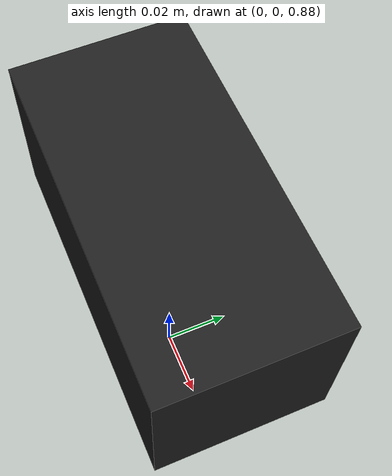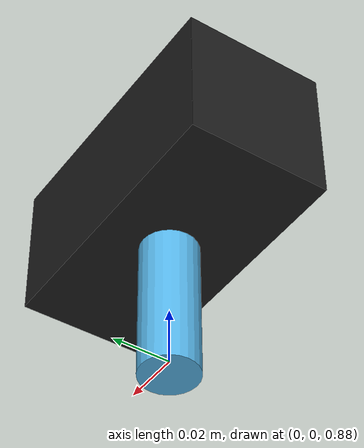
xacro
<?xml version="1.0" ?>
<robot name="camera" xmlns:xacro="http://www.ros.org/wiki/xacro">
<xacro:include filename="$(find rob_lab_mapping)/urdf/rob_lab_items_mesurments.xacro" />

      <link name="world"/>

      <link name="camera_rail">
      <visual>
            <origin rpy="0 0 0" xyz="0 0 0" />
        <geometry>
          <cylinder radius="${camera_rail_r}" length="${camera_rail_l}" />
        </geometry>
      </visual>
      <inertial>
      <origin xyz="0 0 0.0" rpy="0 0 0"/>
      <mass value="0.1"/>
      <inertia
      ixx="0.0" ixy="0.0" ixz="0.0"
      iyy="0.0" iyz="0.0"
      izz="0.0"/>
      </inertial>
      <collision>
        <origin rpy="0 0 0" xyz="0 0 0" />
        <geometry>
          <cylinder radius="${camera_rail_r}" length="${camera_rail_l}" />
        </geometry>
      </collision>
      </link>

        <!-- Camera -->
  <link name="camera_link">
    <visual>
            <origin rpy="0 0 0" xyz="0 0 0" />
        <geometry>
          <box size="${camera_size*2} ${camera_size} ${camera_size}" />
        </geometry>
      </visual>
      <inertial>
      <origin xyz="0 0 0.0" rpy="0 0 0"/>
      <mass value="0.1"/>
      <inertia
      ixx="0.0" ixy="0.0" ixz="0.0"
      iyy="0.0" iyz="0.0"
      izz="0.0"/>
      </inertial>
      <collision>
        <origin rpy="0 0 0" xyz="0 0 0" />
        <geometry>
          <box size="${camera_size*2} ${camera_size} ${camera_size}" />
        </geometry>
      </collision>
    </link>
<gazebo reference="camera_link">
  <sensor name="camera_link_sensor_name" type="depth">
    <update_rate>20</update_rate>
    <camera>
      <horizontal_fov>1.047198</horizontal_fov>
      <image>
        <width>640</width>
        <height>480</height>
        <format>R8G8B8</format>
      </image>
      <clip>
        <near>0.05</near>
        <far>3</far>
      </clip>
    </camera>
    <plugin name="camera_link_controller" filename="libgazebo_ros_openni_kinect.so">
      <baseline>0.2</baseline>
      <alwaysOn>true</alwaysOn>
      <updateRate>1.0</updateRate>
      <cameraName>camera_link_ir</cameraName>
      <imageTopicName>/camera_link/color/image_raw</imageTopicName>
      <cameraInfoTopicName>/camera_link/color/camera_info</cameraInfoTopicName>
      <depthImageTopicName>/camera_link/depth/image_raw</depthImageTopicName>
      <depthImageInfoTopicName>/camera_link/depth/camera_info</depthImageInfoTopicName>
      <pointCloudTopicName>/camera_link/depth/points</pointCloudTopicName>
      <frameName>camera_link</frameName>
      <pointCloudCutoff>0.5</pointCloudCutoff>
      <pointCloudCutoffMax>3.0</pointCloudCutoffMax>
      <distortionK1>0.00000001</distortionK1>
      <distortionK2>0.00000001</distortionK2>
      <distortionK3>0.00000001</distortionK3>
      <distortionT1>0.00000001</distortionT1>
      <distortionT2>0.00000001</distortionT2>
      <CxPrime>0</CxPrime>
      <Cx>0</Cx>
      <Cy>0</Cy>
      <focalLength>0</focalLength>
      <hackBaseline>0</hackBaseline>
    </plugin>
  </sensor>
</gazebo>

      <!-- Joint List Start -->

    <!-- Camera_joints -->
   <joint name="world_to_rail" type="fixed">
      <parent link="world"/>
      <child link="camera_rail"/>
      <origin
      xyz="0 0 ${first_wall_h/2}"
      rpy="0 0 0" />
      </joint>

    <joint name="rail_to_camera" type="revolute">
      <parent link="camera_rail"/>
      <child link="camera_link"/>
      <origin
      xyz="0 0 ${camera_size}"
      rpy="0 0 0" />
      <axis xyz="0 0 1" />
      <limit lower="-6.27" upper="6.27" effort="22.54" velocity="17.4845"/>
      </joint>

    <!-- Joint List End -->

    <!-- Camera joint transmission list -->
      <transmission name="trans_camera">
      <type>transmission_interface/SimpleTransmission</type>
      <joint name="rail_to_camera">
      <hardwareInterface>hardware_interface/EffortJointInterface</hardwareInterface>
      </joint>
      <actuator name="motor_camera">
      <mechanicalReduction>1</mechanicalReduction>
      <hardwareInterface>hardware_interface/EffortJointInterface</hardwareInterface>
      </actuator>
      </transmission>
    <!-- Colos list  -->

 <gazebo reference="camera_link">
        <material>Gazebo/Black</material>
    </gazebo>

    <gazebo>
        <static>true</static>
    </gazebo>

   <gazebo>
        <plugin name="gazebo_ros_control" filename="libgazebo_ros_control.so">
        </plugin>
      </gazebo>

</robot>

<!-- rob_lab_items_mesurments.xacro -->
<robot xmlns:xacro="http://www.ros.org/wiki/xacro">

  <!-- first_wall_size-->
    <xacro:property name="first_wall_w" value="0.2" />
    <xacro:property name="first_wall_l" value="2" />
    <xacro:property name="first_wall_h" value="1.8" />

    <xacro:property name="second_wall_w" value="0.2" />
    <xacro:property name="second_wall_l" value="1.9" />
    <xacro:property name="second_wall_h" value="1.8" />

    <xacro:property name="cmputer_table_1_w" value="0.5" />
    <xacro:property name="cmputer_table_1_l" value="2" />
    <xacro:property name="cmputer_table_1_h" value="0.9" />

    <xacro:property name="cmputer_table_2_w" value="0.5" />
    <xacro:property name="cmputer_table_2_l" value="1.3" />
    <xacro:property name="cmputer_table_2_h" value="0.9" />

    <xacro:property name="cmputer1_w" value="0.1" />
    <xacro:property name="cmputer1_l" value="0.8" />
    <xacro:property name="cmputer1_h" value="0.3" />

    <xacro:property name="cmputer2_w" value="0.1" />
    <xacro:property name="cmputer2_l" value="0.8" />
    <xacro:property name="cmputer2_h" value="0.3" />

    <xacro:property name="camera_rail_r" value="0.01" />
    <xacro:property name="camera_rail_l" value="0.05" />

    <xacro:property name="camera_size" value="0.05" />

</robot>
